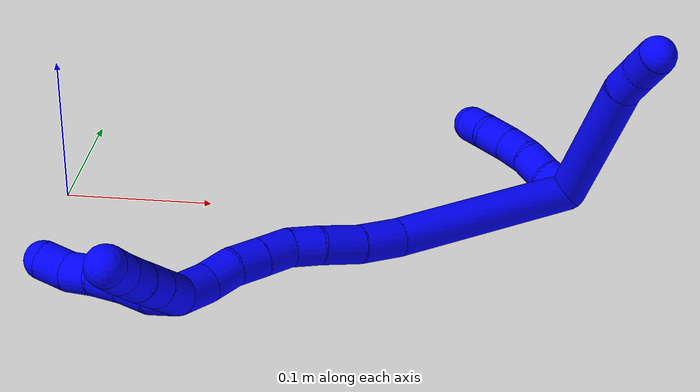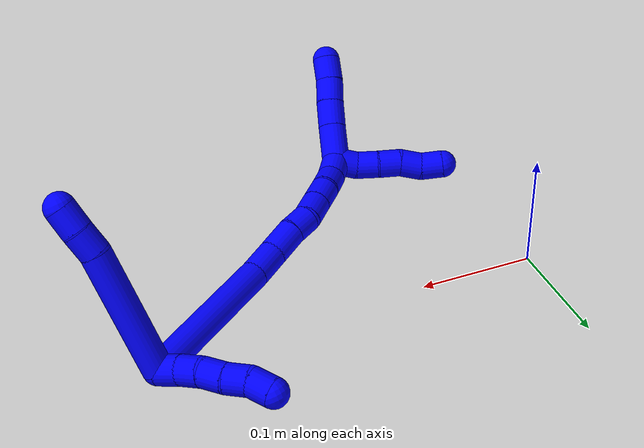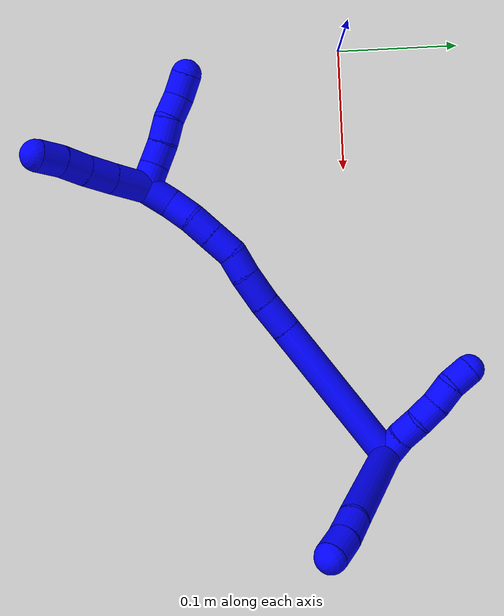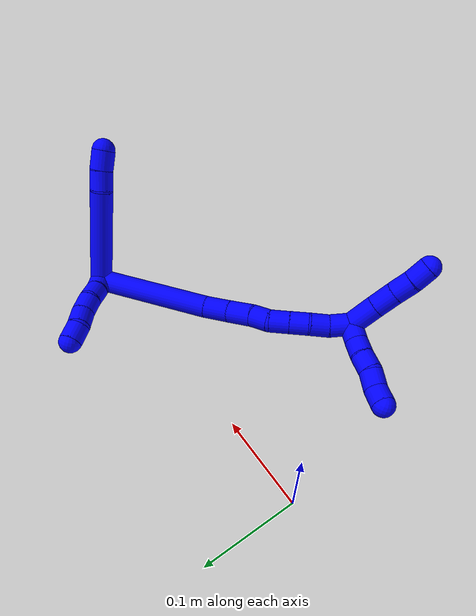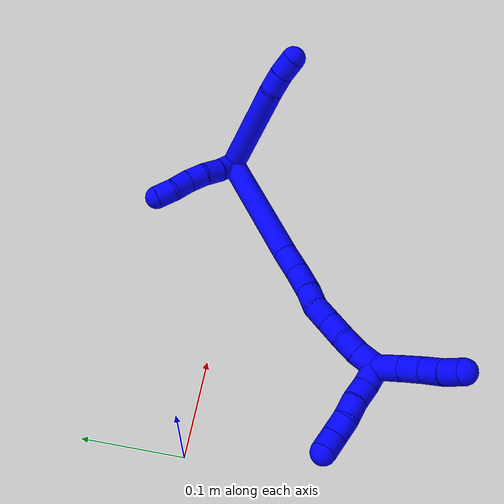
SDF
<sdf version="1.7">
 <world name="default">
  <model name="1">
   <static>0</static>
   <link name="1">
    <collision name="collision-cylinder-e_1_2_8">
     <pose>0.010326 0.001649 -0.052721 -3.11034 0.19332 -2.82194</pose>
     <geometry><cylinder><radius>0.0125</radius><length>0.107497</length></cylinder></geometry>
     <surface>
      <friction><ode><mu>1.16</mu><mu2>1.16</mu2><slip1>0</slip1><slip2>0</slip2></ode></friction>
      <contact><ode><kp>1e+06</kp><kd>1</kd><max_vel>0</max_vel><min_depth>0.001</min_depth></ode></contact>
     </surface>
    </collision>
    <visual name="visual-cylinder-e_1_2_8">
     <pose>0.010326 0.001649 -0.052721 -3.11034 0.19332 -2.82194</pose>
     <geometry><cylinder><radius>0.0125</radius><length>0.107497</length></cylinder></geometry>
     <material><ambient>0 0 1 1</ambient></material>
    </visual>
    <collision name="collision-cylinder-e_2_8_9">
     <pose>0.021833 0.005676 -0.115765 -2.91504 0.110982 -0.90843</pose>
     <geometry><cylinder><radius>0.0125</radius><length>0.021317</length></cylinder></geometry>
     <surface>
      <friction><ode><mu>1.16</mu><mu2>1.16</mu2><slip1>0</slip1><slip2>0</slip2></ode></friction>
      <contact><ode><kp>1e+06</kp><kd>1</kd><max_vel>0</max_vel><min_depth>0.001</min_depth></ode></contact>
     </surface>
    </collision>
    <visual name="visual-cylinder-e_2_8_9">
     <pose>0.021833 0.005676 -0.115765 -2.91504 0.110982 -0.90843</pose>
     <geometry><cylinder><radius>0.0125</radius><length>0.021317</length></cylinder></geometry>
     <material><ambient>0 0 1 1</ambient></material>
    </visual>
    <collision name="collision-cylinder-e_3_9_6">
     <pose>0.023026 0.009979 -0.136504 -2.95907 0.001272 -0.013897</pose>
     <geometry><cylinder><radius>0.0125</radius><length>0.021186</length></cylinder></geometry>
     <surface>
      <friction><ode><mu>1.16</mu><mu2>1.16</mu2><slip1>0</slip1><slip2>0</slip2></ode></friction>
      <contact><ode><kp>1e+06</kp><kd>1</kd><max_vel>0</max_vel><min_depth>0.001</min_depth></ode></contact>
     </surface>
    </collision>
    <visual name="visual-cylinder-e_3_9_6">
     <pose>0.023026 0.009979 -0.136504 -2.95907 0.001272 -0.013897</pose>
     <geometry><cylinder><radius>0.0125</radius><length>0.021186</length></cylinder></geometry>
     <material><ambient>0 0 1 1</ambient></material>
    </visual>
    <collision name="collision-cylinder-e_1_2_10">
     <pose>0.005636 -0.007723 0.00293 1.20825 0.598791 0.419823</pose>
     <geometry><cylinder><radius>0.0125</radius><length>0.02</length></cylinder></geometry>
     <surface>
      <friction><ode><mu>1.16</mu><mu2>1.16</mu2><slip1>0</slip1><slip2>0</slip2></ode></friction>
      <contact><ode><kp>1e+06</kp><kd>1</kd><max_vel>0</max_vel><min_depth>0.001</min_depth></ode></contact>
     </surface>
    </collision>
    <visual name="visual-cylinder-e_1_2_10">
     <pose>0.005636 -0.007723 0.00293 1.20825 0.598791 0.419823</pose>
     <geometry><cylinder><radius>0.0125</radius><length>0.02</length></cylinder></geometry>
     <material><ambient>0 0 1 1</ambient></material>
    </visual>
    <collision name="collision-cylinder-e_2_10_11">
     <pose>0.018043 -0.022184 0.00882 1.15665 0.743735 0.498593</pose>
     <geometry><cylinder><radius>0.0125</radius><length>0.02</length></cylinder></geometry>
     <surface>
      <friction><ode><mu>1.16</mu><mu2>1.16</mu2><slip1>0</slip1><slip2>0</slip2></ode></friction>
      <contact><ode><kp>1e+06</kp><kd>1</kd><max_vel>0</max_vel><min_depth>0.001</min_depth></ode></contact>
     </surface>
    </collision>
    <visual name="visual-cylinder-e_2_10_11">
     <pose>0.018043 -0.022184 0.00882 1.15665 0.743735 0.498593</pose>
     <geometry><cylinder><radius>0.0125</radius><length>0.02</length></cylinder></geometry>
     <material><ambient>0 0 1 1</ambient></material>
    </visual>
    <collision name="collision-cylinder-e_3_11_12">
     <pose>0.030677 -0.035381 0.016669 0.923166 0.626558 0.31953</pose>
     <geometry><cylinder><radius>0.0125</radius><length>0.02</length></cylinder></geometry>
     <surface>
      <friction><ode><mu>1.16</mu><mu2>1.16</mu2><slip1>0</slip1><slip2>0</slip2></ode></friction>
      <contact><ode><kp>1e+06</kp><kd>1</kd><max_vel>0</max_vel><min_depth>0.001</min_depth></ode></contact>
     </surface>
    </collision>
    <visual name="visual-cylinder-e_3_11_12">
     <pose>0.030677 -0.035381 0.016669 0.923166 0.626558 0.31953</pose>
     <geometry><cylinder><radius>0.0125</radius><length>0.02</length></cylinder></geometry>
     <material><ambient>0 0 1 1</ambient></material>
    </visual>
    <collision name="collision-cylinder-e_4_12_13">
     <pose>0.041502 -0.049475 0.025692 1.07426 0.519168 0.313723</pose>
     <geometry><cylinder><radius>0.0125</radius><length>0.02</length></cylinder></geometry>
     <surface>
      <friction><ode><mu>1.16</mu><mu2>1.16</mu2><slip1>0</slip1><slip2>0</slip2></ode></friction>
      <contact><ode><kp>1e+06</kp><kd>1</kd><max_vel>0</max_vel><min_depth>0.001</min_depth></ode></contact>
     </surface>
    </collision>
    <visual name="visual-cylinder-e_4_12_13">
     <pose>0.041502 -0.049475 0.025692 1.07426 0.519168 0.313723</pose>
     <geometry><cylinder><radius>0.0125</radius><length>0.02</length></cylinder></geometry>
     <material><ambient>0 0 1 1</ambient></material>
    </visual>
    <collision name="collision-cylinder-e_5_13_5">
     <pose>0.052062 -0.062393 0.036211 0.691429 0.59416 0.219644</pose>
     <geometry><cylinder><radius>0.0125</radius><length>0.02</length></cylinder></geometry>
     <surface>
      <friction><ode><mu>1.16</mu><mu2>1.16</mu2><slip1>0</slip1><slip2>0</slip2></ode></friction>
      <contact><ode><kp>1e+06</kp><kd>1</kd><max_vel>0</max_vel><min_depth>0.001</min_depth></ode></contact>
     </surface>
    </collision>
    <visual name="visual-cylinder-e_5_13_5">
     <pose>0.052062 -0.062393 0.036211 0.691429 0.59416 0.219644</pose>
     <geometry><cylinder><radius>0.0125</radius><length>0.02</length></cylinder></geometry>
     <material><ambient>0 0 1 1</ambient></material>
    </visual>
    <collision name="collision-cylinder-e_1_2_14">
     <pose>-0.038882 -0.053399 -0.009232 1.74199 -0.622368 -0.729808</pose>
     <geometry><cylinder><radius>0.0125</radius><length>0.133394</length></cylinder></geometry>
     <surface>
      <friction><ode><mu>1.16</mu><mu2>1.16</mu2><slip1>0</slip1><slip2>0</slip2></ode></friction>
      <contact><ode><kp>1e+06</kp><kd>1</kd><max_vel>0</max_vel><min_depth>0.001</min_depth></ode></contact>
     </surface>
    </collision>
    <visual name="visual-cylinder-e_1_2_14">
     <pose>-0.038882 -0.053399 -0.009232 1.74199 -0.622368 -0.729808</pose>
     <geometry><cylinder><radius>0.0125</radius><length>0.133394</length></cylinder></geometry>
     <material><ambient>0 0 1 1</ambient></material>
    </visual>
    <collision name="collision-cylinder-e_2_14_15">
     <pose>-0.085407 -0.118581 -0.021645 1.83441 -0.55953 -0.717752</pose>
     <geometry><cylinder><radius>0.0125</radius><length>0.028801</length></cylinder></geometry>
     <surface>
      <friction><ode><mu>1.16</mu><mu2>1.16</mu2><slip1>0</slip1><slip2>0</slip2></ode></friction>
      <contact><ode><kp>1e+06</kp><kd>1</kd><max_vel>0</max_vel><min_depth>0.001</min_depth></ode></contact>
     </surface>
    </collision>
    <visual name="visual-cylinder-e_2_14_15">
     <pose>-0.085407 -0.118581 -0.021645 1.83441 -0.55953 -0.717752</pose>
     <geometry><cylinder><radius>0.0125</radius><length>0.028801</length></cylinder></geometry>
     <material><ambient>0 0 1 1</ambient></material>
    </visual>
    <collision name="collision-cylinder-e_3_15_16">
     <pose>-0.099001 -0.142675 -0.028671 1.87362 -0.432277 -0.580411</pose>
     <geometry><cylinder><radius>0.0125</radius><length>0.028409</length></cylinder></geometry>
     <surface>
      <friction><ode><mu>1.16</mu><mu2>1.16</mu2><slip1>0</slip1><slip2>0</slip2></ode></friction>
      <contact><ode><kp>1e+06</kp><kd>1</kd><max_vel>0</max_vel><min_depth>0.001</min_depth></ode></contact>
     </surface>
    </collision>
    <visual name="visual-cylinder-e_3_15_16">
     <pose>-0.099001 -0.142675 -0.028671 1.87362 -0.432277 -0.580411</pose>
     <geometry><cylinder><radius>0.0125</radius><length>0.028409</length></cylinder></geometry>
     <material><ambient>0 0 1 1</ambient></material>
    </visual>
    <collision name="collision-cylinder-e_4_16_17">
     <pose>-0.109331 -0.164243 -0.034088 1.73888 -0.436407 -0.513467</pose>
     <geometry><cylinder><radius>0.0125</radius><length>0.02072</length></cylinder></geometry>
     <surface>
      <friction><ode><mu>1.16</mu><mu2>1.16</mu2><slip1>0</slip1><slip2>0</slip2></ode></friction>
      <contact><ode><kp>1e+06</kp><kd>1</kd><max_vel>0</max_vel><min_depth>0.001</min_depth></ode></contact>
     </surface>
    </collision>
    <visual name="visual-cylinder-e_4_16_17">
     <pose>-0.109331 -0.164243 -0.034088 1.73888 -0.436407 -0.513467</pose>
     <geometry><cylinder><radius>0.0125</radius><length>0.02072</length></cylinder></geometry>
     <material><ambient>0 0 1 1</ambient></material>
    </visual>
    <collision name="collision-cylinder-e_5_17_18">
     <pose>-0.121162 -0.181348 -0.038668 1.93691 -0.725302 -1.00851</pose>
     <geometry><cylinder><radius>0.0125</radius><length>0.022467</length></cylinder></geometry>
     <surface>
      <friction><ode><mu>1.16</mu><mu2>1.16</mu2><slip1>0</slip1><slip2>0</slip2></ode></friction>
      <contact><ode><kp>1e+06</kp><kd>1</kd><max_vel>0</max_vel><min_depth>0.001</min_depth></ode></contact>
     </surface>
    </collision>
    <visual name="visual-cylinder-e_5_17_18">
     <pose>-0.121162 -0.181348 -0.038668 1.93691 -0.725302 -1.00851</pose>
     <geometry><cylinder><radius>0.0125</radius><length>0.022467</length></cylinder></geometry>
     <material><ambient>0 0 1 1</ambient></material>
    </visual>
    <collision name="collision-cylinder-e_6_18_19">
     <pose>-0.135507 -0.196636 -0.044578 1.94259 -0.712109 -0.996746</pose>
     <geometry><cylinder><radius>0.0125</radius><length>0.021097</length></cylinder></geometry>
     <surface>
      <friction><ode><mu>1.16</mu><mu2>1.16</mu2><slip1>0</slip1><slip2>0</slip2></ode></friction>
      <contact><ode><kp>1e+06</kp><kd>1</kd><max_vel>0</max_vel><min_depth>0.001</min_depth></ode></contact>
     </surface>
    </collision>
    <visual name="visual-cylinder-e_6_18_19">
     <pose>-0.135507 -0.196636 -0.044578 1.94259 -0.712109 -0.996746</pose>
     <geometry><cylinder><radius>0.0125</radius><length>0.021097</length></cylinder></geometry>
     <material><ambient>0 0 1 1</ambient></material>
    </visual>
    <collision name="collision-cylinder-e_7_19_20">
     <pose>-0.150844 -0.210384 -0.049524 1.88433 -0.905075 -1.17888</pose>
     <geometry><cylinder><radius>0.0125</radius><length>0.021475</length></cylinder></geometry>
     <surface>
      <friction><ode><mu>1.16</mu><mu2>1.16</mu2><slip1>0</slip1><slip2>0</slip2></ode></friction>
      <contact><ode><kp>1e+06</kp><kd>1</kd><max_vel>0</max_vel><min_depth>0.001</min_depth></ode></contact>
     </surface>
    </collision>
    <visual name="visual-cylinder-e_7_19_20">
     <pose>-0.150844 -0.210384 -0.049524 1.88433 -0.905075 -1.17888</pose>
     <geometry><cylinder><radius>0.0125</radius><length>0.021475</length></cylinder></geometry>
     <material><ambient>0 0 1 1</ambient></material>
    </visual>
    <collision name="collision-cylinder-e_8_20_1">
     <pose>-0.167626 -0.223656 -0.056227 2.16031 -0.783032 -1.31584</pose>
     <geometry><cylinder><radius>0.0125</radius><length>0.023637</length></cylinder></geometry>
     <surface>
      <friction><ode><mu>1.16</mu><mu2>1.16</mu2><slip1>0</slip1><slip2>0</slip2></ode></friction>
      <contact><ode><kp>1e+06</kp><kd>1</kd><max_vel>0</max_vel><min_depth>0.001</min_depth></ode></contact>
     </surface>
    </collision>
    <visual name="visual-cylinder-e_8_20_1">
     <pose>-0.167626 -0.223656 -0.056227 2.16031 -0.783032 -1.31584</pose>
     <geometry><cylinder><radius>0.0125</radius><length>0.023637</length></cylinder></geometry>
     <material><ambient>0 0 1 1</ambient></material>
    </visual>
    <collision name="collision-cylinder-e_1_1_21">
     <pose>-0.175272 -0.238605 -0.054906 0.928205 0.069159 0.034629</pose>
     <geometry><cylinder><radius>0.0125</radius><length>0.02</length></cylinder></geometry>
     <surface>
      <friction><ode><mu>1.16</mu><mu2>1.16</mu2><slip1>0</slip1><slip2>0</slip2></ode></friction>
      <contact><ode><kp>1e+06</kp><kd>1</kd><max_vel>0</max_vel><min_depth>0.001</min_depth></ode></contact>
     </surface>
    </collision>
    <visual name="visual-cylinder-e_1_1_21">
     <pose>-0.175272 -0.238605 -0.054906 0.928205 0.069159 0.034629</pose>
     <geometry><cylinder><radius>0.0125</radius><length>0.02</length></cylinder></geometry>
     <material><ambient>0 0 1 1</ambient></material>
    </visual>
    <collision name="collision-cylinder-e_2_21_22">
     <pose>-0.171792 -0.255476 -0.045283 1.1816 0.282714 0.190317</pose>
     <geometry><cylinder><radius>0.0125</radius><length>0.02</length></cylinder></geometry>
     <surface>
      <friction><ode><mu>1.16</mu><mu2>1.16</mu2><slip1>0</slip1><slip2>0</slip2></ode></friction>
      <contact><ode><kp>1e+06</kp><kd>1</kd><max_vel>0</max_vel><min_depth>0.001</min_depth></ode></contact>
     </surface>
    </collision>
    <visual name="visual-cylinder-e_2_21_22">
     <pose>-0.171792 -0.255476 -0.045283 1.1816 0.282714 0.190317</pose>
     <geometry><cylinder><radius>0.0125</radius><length>0.02</length></cylinder></geometry>
     <material><ambient>0 0 1 1</ambient></material>
    </visual>
    <collision name="collision-cylinder-e_3_22_23">
     <pose>-0.167508 -0.273599 -0.038114 1.20626 0.149946 0.103376</pose>
     <geometry><cylinder><radius>0.0125</radius><length>0.02</length></cylinder></geometry>
     <surface>
      <friction><ode><mu>1.16</mu><mu2>1.16</mu2><slip1>0</slip1><slip2>0</slip2></ode></friction>
      <contact><ode><kp>1e+06</kp><kd>1</kd><max_vel>0</max_vel><min_depth>0.001</min_depth></ode></contact>
     </surface>
    </collision>
    <visual name="visual-cylinder-e_3_22_23">
     <pose>-0.167508 -0.273599 -0.038114 1.20626 0.149946 0.103376</pose>
     <geometry><cylinder><radius>0.0125</radius><length>0.02</length></cylinder></geometry>
     <material><ambient>0 0 1 1</ambient></material>
    </visual>
    <collision name="collision-cylinder-e_4_23_24">
     <pose>-0.16441 -0.290866 -0.028847 0.949926 0.161103 0.082975</pose>
     <geometry><cylinder><radius>0.0125</radius><length>0.02</length></cylinder></geometry>
     <surface>
      <friction><ode><mu>1.16</mu><mu2>1.16</mu2><slip1>0</slip1><slip2>0</slip2></ode></friction>
      <contact><ode><kp>1e+06</kp><kd>1</kd><max_vel>0</max_vel><min_depth>0.001</min_depth></ode></contact>
     </surface>
    </collision>
    <visual name="visual-cylinder-e_4_23_24">
     <pose>-0.16441 -0.290866 -0.028847 0.949926 0.161103 0.082975</pose>
     <geometry><cylinder><radius>0.0125</radius><length>0.02</length></cylinder></geometry>
     <material><ambient>0 0 1 1</ambient></material>
    </visual>
    <collision name="collision-cylinder-e_5_24_4">
     <pose>-0.159992 -0.308021 -0.020141 1.25678 0.285244 0.207937</pose>
     <geometry><cylinder><radius>0.0125</radius><length>0.02</length></cylinder></geometry>
     <surface>
      <friction><ode><mu>1.16</mu><mu2>1.16</mu2><slip1>0</slip1><slip2>0</slip2></ode></friction>
      <contact><ode><kp>1e+06</kp><kd>1</kd><max_vel>0</max_vel><min_depth>0.001</min_depth></ode></contact>
     </surface>
    </collision>
    <visual name="visual-cylinder-e_5_24_4">
     <pose>-0.159992 -0.308021 -0.020141 1.25678 0.285244 0.207937</pose>
     <geometry><cylinder><radius>0.0125</radius><length>0.02</length></cylinder></geometry>
     <material><ambient>0 0 1 1</ambient></material>
    </visual>
    <collision name="collision-cylinder-e_1_1_25">
     <pose>-0.181681 -0.236797 -0.07493 2.72719 -0.356675 -1.4176</pose>
     <geometry><cylinder><radius>0.0125</radius><length>0.032751</length></cylinder></geometry>
     <surface>
      <friction><ode><mu>1.16</mu><mu2>1.16</mu2><slip1>0</slip1><slip2>0</slip2></ode></friction>
      <contact><ode><kp>1e+06</kp><kd>1</kd><max_vel>0</max_vel><min_depth>0.001</min_depth></ode></contact>
     </surface>
    </collision>
    <visual name="visual-cylinder-e_1_1_25">
     <pose>-0.181681 -0.236797 -0.07493 2.72719 -0.356675 -1.4176</pose>
     <geometry><cylinder><radius>0.0125</radius><length>0.032751</length></cylinder></geometry>
     <material><ambient>0 0 1 1</ambient></material>
    </visual>
    <collision name="collision-cylinder-e_2_25_26">
     <pose>-0.191547 -0.247809 -0.099295 2.70357 -0.349123 -1.34007</pose>
     <geometry><cylinder><radius>0.0125</radius><length>0.024253</length></cylinder></geometry>
     <surface>
      <friction><ode><mu>1.16</mu><mu2>1.16</mu2><slip1>0</slip1><slip2>0</slip2></ode></friction>
      <contact><ode><kp>1e+06</kp><kd>1</kd><max_vel>0</max_vel><min_depth>0.001</min_depth></ode></contact>
     </surface>
    </collision>
    <visual name="visual-cylinder-e_2_25_26">
     <pose>-0.191547 -0.247809 -0.099295 2.70357 -0.349123 -1.34007</pose>
     <geometry><cylinder><radius>0.0125</radius><length>0.024253</length></cylinder></geometry>
     <material><ambient>0 0 1 1</ambient></material>
    </visual>
    <collision name="collision-cylinder-e_3_26_27">
     <pose>-0.199058 -0.257507 -0.118755 2.65253 -0.314051 -1.13084</pose>
     <geometry><cylinder><radius>0.0125</radius><length>0.021775</length></cylinder></geometry>
     <surface>
      <friction><ode><mu>1.16</mu><mu2>1.16</mu2><slip1>0</slip1><slip2>0</slip2></ode></friction>
      <contact><ode><kp>1e+06</kp><kd>1</kd><max_vel>0</max_vel><min_depth>0.001</min_depth></ode></contact>
     </surface>
    </collision>
    <visual name="visual-cylinder-e_3_26_27">
     <pose>-0.199058 -0.257507 -0.118755 2.65253 -0.314051 -1.13084</pose>
     <geometry><cylinder><radius>0.0125</radius><length>0.021775</length></cylinder></geometry>
     <material><ambient>0 0 1 1</ambient></material>
    </visual>
    <collision name="collision-cylinder-e_4_27_3">
     <pose>-0.205668 -0.265922 -0.137353 2.78245 -0.310995 -1.42464</pose>
     <geometry><cylinder><radius>0.0125</radius><length>0.021222</length></cylinder></geometry>
     <surface>
      <friction><ode><mu>1.16</mu><mu2>1.16</mu2><slip1>0</slip1><slip2>0</slip2></ode></friction>
      <contact><ode><kp>1e+06</kp><kd>1</kd><max_vel>0</max_vel><min_depth>0.001</min_depth></ode></contact>
     </surface>
    </collision>
    <visual name="visual-cylinder-e_4_27_3">
     <pose>-0.205668 -0.265922 -0.137353 2.78245 -0.310995 -1.42464</pose>
     <geometry><cylinder><radius>0.0125</radius><length>0.021222</length></cylinder></geometry>
     <material><ambient>0 0 1 1</ambient></material>
    </visual>
    <collision name="collision-sphere-3">
     <pose>-0.208915 -0.269473 -0.146811 0 -0 0</pose>
     <geometry><sphere><radius>0.0125</radius></sphere></geometry>
     <surface>
      <friction><ode><mu>1.16</mu><mu2>1.16</mu2><slip1>0</slip1><slip2>0</slip2></ode></friction>
      <contact><ode><kp>1e+06</kp><kd>1</kd><max_vel>0</max_vel><min_depth>0.001</min_depth></ode></contact>
     </surface>
    </collision>
    <visual name="visual-sphere-3">
     <pose>-0.208915 -0.269473 -0.146811 0 -0 0</pose>
     <geometry><sphere><radius>0.0125</radius></sphere></geometry>
     <material><ambient>0 0 1 1</ambient></material>
    </visual>
    <collision name="collision-sphere-27">
     <pose>-0.202421 -0.262371 -0.127896 0 -0 0</pose>
     <geometry><sphere><radius>0.0125</radius></sphere></geometry>
     <surface>
      <friction><ode><mu>1.16</mu><mu2>1.16</mu2><slip1>0</slip1><slip2>0</slip2></ode></friction>
      <contact><ode><kp>1e+06</kp><kd>1</kd><max_vel>0</max_vel><min_depth>0.001</min_depth></ode></contact>
     </surface>
    </collision>
    <visual name="visual-sphere-27">
     <pose>-0.202421 -0.262371 -0.127896 0 -0 0</pose>
     <geometry><sphere><radius>0.0125</radius></sphere></geometry>
     <material><ambient>0 0 1 1</ambient></material>
    </visual>
    <collision name="collision-sphere-26">
     <pose>-0.195695 -0.252642 -0.109614 0 -0 0</pose>
     <geometry><sphere><radius>0.0125</radius></sphere></geometry>
     <surface>
      <friction><ode><mu>1.16</mu><mu2>1.16</mu2><slip1>0</slip1><slip2>0</slip2></ode></friction>
      <contact><ode><kp>1e+06</kp><kd>1</kd><max_vel>0</max_vel><min_depth>0.001</min_depth></ode></contact>
     </surface>
    </collision>
    <visual name="visual-sphere-26">
     <pose>-0.195695 -0.252642 -0.109614 0 -0 0</pose>
     <geometry><sphere><radius>0.0125</radius></sphere></geometry>
     <material><ambient>0 0 1 1</ambient></material>
    </visual>
    <collision name="collision-sphere-25">
     <pose>-0.187399 -0.242976 -0.088976 0 -0 0</pose>
     <geometry><sphere><radius>0.0125</radius></sphere></geometry>
     <surface>
      <friction><ode><mu>1.16</mu><mu2>1.16</mu2><slip1>0</slip1><slip2>0</slip2></ode></friction>
      <contact><ode><kp>1e+06</kp><kd>1</kd><max_vel>0</max_vel><min_depth>0.001</min_depth></ode></contact>
     </surface>
    </collision>
    <visual name="visual-sphere-25">
     <pose>-0.187399 -0.242976 -0.088976 0 -0 0</pose>
     <geometry><sphere><radius>0.0125</radius></sphere></geometry>
     <material><ambient>0 0 1 1</ambient></material>
    </visual>
    <collision name="collision-sphere-4">
     <pose>-0.157178 -0.317147 -0.017177 0 -0 0</pose>
     <geometry><sphere><radius>0.0125</radius></sphere></geometry>
     <surface>
      <friction><ode><mu>1.16</mu><mu2>1.16</mu2><slip1>0</slip1><slip2>0</slip2></ode></friction>
      <contact><ode><kp>1e+06</kp><kd>1</kd><max_vel>0</max_vel><min_depth>0.001</min_depth></ode></contact>
     </surface>
    </collision>
    <visual name="visual-sphere-4">
     <pose>-0.157178 -0.317147 -0.017177 0 -0 0</pose>
     <geometry><sphere><radius>0.0125</radius></sphere></geometry>
     <material><ambient>0 0 1 1</ambient></material>
    </visual>
    <collision name="collision-sphere-24">
     <pose>-0.162806 -0.298894 -0.023105 0 -0 0</pose>
     <geometry><sphere><radius>0.0125</radius></sphere></geometry>
     <surface>
      <friction><ode><mu>1.16</mu><mu2>1.16</mu2><slip1>0</slip1><slip2>0</slip2></ode></friction>
      <contact><ode><kp>1e+06</kp><kd>1</kd><max_vel>0</max_vel><min_depth>0.001</min_depth></ode></contact>
     </surface>
    </collision>
    <visual name="visual-sphere-24">
     <pose>-0.162806 -0.298894 -0.023105 0 -0 0</pose>
     <geometry><sphere><radius>0.0125</radius></sphere></geometry>
     <material><ambient>0 0 1 1</ambient></material>
    </visual>
    <collision name="collision-sphere-23">
     <pose>-0.166014 -0.282837 -0.034589 0 -0 0</pose>
     <geometry><sphere><radius>0.0125</radius></sphere></geometry>
     <surface>
      <friction><ode><mu>1.16</mu><mu2>1.16</mu2><slip1>0</slip1><slip2>0</slip2></ode></friction>
      <contact><ode><kp>1e+06</kp><kd>1</kd><max_vel>0</max_vel><min_depth>0.001</min_depth></ode></contact>
     </surface>
    </collision>
    <visual name="visual-sphere-23">
     <pose>-0.166014 -0.282837 -0.034589 0 -0 0</pose>
     <geometry><sphere><radius>0.0125</radius></sphere></geometry>
     <material><ambient>0 0 1 1</ambient></material>
    </visual>
    <collision name="collision-sphere-22">
     <pose>-0.169002 -0.264361 -0.04164 0 -0 0</pose>
     <geometry><sphere><radius>0.0125</radius></sphere></geometry>
     <surface>
      <friction><ode><mu>1.16</mu><mu2>1.16</mu2><slip1>0</slip1><slip2>0</slip2></ode></friction>
      <contact><ode><kp>1e+06</kp><kd>1</kd><max_vel>0</max_vel><min_depth>0.001</min_depth></ode></contact>
     </surface>
    </collision>
    <visual name="visual-sphere-22">
     <pose>-0.169002 -0.264361 -0.04164 0 -0 0</pose>
     <geometry><sphere><radius>0.0125</radius></sphere></geometry>
     <material><ambient>0 0 1 1</ambient></material>
    </visual>
    <collision name="collision-sphere-21">
     <pose>-0.174581 -0.246591 -0.048927 0 -0 0</pose>
     <geometry><sphere><radius>0.0125</radius></sphere></geometry>
     <surface>
      <friction><ode><mu>1.16</mu><mu2>1.16</mu2><slip1>0</slip1><slip2>0</slip2></ode></friction>
      <contact><ode><kp>1e+06</kp><kd>1</kd><max_vel>0</max_vel><min_depth>0.001</min_depth></ode></contact>
     </surface>
    </collision>
    <visual name="visual-sphere-21">
     <pose>-0.174581 -0.246591 -0.048927 0 -0 0</pose>
     <geometry><sphere><radius>0.0125</radius></sphere></geometry>
     <material><ambient>0 0 1 1</ambient></material>
    </visual>
    <collision name="collision-sphere-1">
     <pose>-0.175963 -0.230619 -0.060884 0 -0 0</pose>
     <geometry><sphere><radius>0.0125</radius></sphere></geometry>
     <surface>
      <friction><ode><mu>1.16</mu><mu2>1.16</mu2><slip1>0</slip1><slip2>0</slip2></ode></friction>
      <contact><ode><kp>1e+06</kp><kd>1</kd><max_vel>0</max_vel><min_depth>0.001</min_depth></ode></contact>
     </surface>
    </collision>
    <visual name="visual-sphere-1">
     <pose>-0.175963 -0.230619 -0.060884 0 -0 0</pose>
     <geometry><sphere><radius>0.0125</radius></sphere></geometry>
     <material><ambient>0 0 1 1</ambient></material>
    </visual>
    <collision name="collision-sphere-11">
     <pose>0.024814 -0.028921 0.011782 0 -0 0</pose>
     <geometry><sphere><radius>0.0125</radius></sphere></geometry>
     <surface>
      <friction><ode><mu>1.16</mu><mu2>1.16</mu2><slip1>0</slip1><slip2>0</slip2></ode></friction>
      <contact><ode><kp>1e+06</kp><kd>1</kd><max_vel>0</max_vel><min_depth>0.001</min_depth></ode></contact>
     </surface>
    </collision>
    <visual name="visual-sphere-11">
     <pose>0.024814 -0.028921 0.011782 0 -0 0</pose>
     <geometry><sphere><radius>0.0125</radius></sphere></geometry>
     <material><ambient>0 0 1 1</ambient></material>
    </visual>
    <collision name="collision-sphere-10">
     <pose>0.011273 -0.015446 0.005859 0 -0 0</pose>
     <geometry><sphere><radius>0.0125</radius></sphere></geometry>
     <surface>
      <friction><ode><mu>1.16</mu><mu2>1.16</mu2><slip1>0</slip1><slip2>0</slip2></ode></friction>
      <contact><ode><kp>1e+06</kp><kd>1</kd><max_vel>0</max_vel><min_depth>0.001</min_depth></ode></contact>
     </surface>
    </collision>
    <visual name="visual-sphere-10">
     <pose>0.011273 -0.015446 0.005859 0 -0 0</pose>
     <geometry><sphere><radius>0.0125</radius></sphere></geometry>
     <material><ambient>0 0 1 1</ambient></material>
    </visual>
    <collision name="collision-sphere-6">
     <pose>0.02304 0.011901 -0.146922 0 -0 0</pose>
     <geometry><sphere><radius>0.0125</radius></sphere></geometry>
     <surface>
      <friction><ode><mu>1.16</mu><mu2>1.16</mu2><slip1>0</slip1><slip2>0</slip2></ode></friction>
      <contact><ode><kp>1e+06</kp><kd>1</kd><max_vel>0</max_vel><min_depth>0.001</min_depth></ode></contact>
     </surface>
    </collision>
    <visual name="visual-sphere-6">
     <pose>0.02304 0.011901 -0.146922 0 -0 0</pose>
     <geometry><sphere><radius>0.0125</radius></sphere></geometry>
     <material><ambient>0 0 1 1</ambient></material>
    </visual>
    <collision name="collision-sphere-9">
     <pose>0.023013 0.008056 -0.126087 0 -0 0</pose>
     <geometry><sphere><radius>0.0125</radius></sphere></geometry>
     <surface>
      <friction><ode><mu>1.16</mu><mu2>1.16</mu2><slip1>0</slip1><slip2>0</slip2></ode></friction>
      <contact><ode><kp>1e+06</kp><kd>1</kd><max_vel>0</max_vel><min_depth>0.001</min_depth></ode></contact>
     </surface>
    </collision>
    <visual name="visual-sphere-9">
     <pose>0.023013 0.008056 -0.126087 0 -0 0</pose>
     <geometry><sphere><radius>0.0125</radius></sphere></geometry>
     <material><ambient>0 0 1 1</ambient></material>
    </visual>
    <collision name="collision-sphere-2">
     <geometry><sphere><radius>0.0125</radius></sphere></geometry>
     <surface>
      <friction><ode><mu>1.16</mu><mu2>1.16</mu2><slip1>0</slip1><slip2>0</slip2></ode></friction>
      <contact><ode><kp>1e+06</kp><kd>1</kd><max_vel>0</max_vel><min_depth>0.001</min_depth></ode></contact>
     </surface>
    </collision>
    <visual name="visual-sphere-2">
     <geometry><sphere><radius>0.0125</radius></sphere></geometry>
     <material><ambient>0 0 1 1</ambient></material>
    </visual>
    <collision name="collision-sphere-19">
     <pose>-0.142399 -0.204076 -0.047479 0 -0 0</pose>
     <geometry><sphere><radius>0.0125</radius></sphere></geometry>
     <surface>
      <friction><ode><mu>1.16</mu><mu2>1.16</mu2><slip1>0</slip1><slip2>0</slip2></ode></friction>
      <contact><ode><kp>1e+06</kp><kd>1</kd><max_vel>0</max_vel><min_depth>0.001</min_depth></ode></contact>
     </surface>
    </collision>
    <visual name="visual-sphere-19">
     <pose>-0.142399 -0.204076 -0.047479 0 -0 0</pose>
     <geometry><sphere><radius>0.0125</radius></sphere></geometry>
     <material><ambient>0 0 1 1</ambient></material>
    </visual>
    <collision name="collision-sphere-8">
     <pose>0.020652 0.003297 -0.105443 0 -0 0</pose>
     <geometry><sphere><radius>0.0125</radius></sphere></geometry>
     <surface>
      <friction><ode><mu>1.16</mu><mu2>1.16</mu2><slip1>0</slip1><slip2>0</slip2></ode></friction>
      <contact><ode><kp>1e+06</kp><kd>1</kd><max_vel>0</max_vel><min_depth>0.001</min_depth></ode></contact>
     </surface>
    </collision>
    <visual name="visual-sphere-8">
     <pose>0.020652 0.003297 -0.105443 0 -0 0</pose>
     <geometry><sphere><radius>0.0125</radius></sphere></geometry>
     <material><ambient>0 0 1 1</ambient></material>
    </visual>
    <collision name="collision-sphere-12">
     <pose>0.036541 -0.041842 0.021556 0 -0 0</pose>
     <geometry><sphere><radius>0.0125</radius></sphere></geometry>
     <surface>
      <friction><ode><mu>1.16</mu><mu2>1.16</mu2><slip1>0</slip1><slip2>0</slip2></ode></friction>
      <contact><ode><kp>1e+06</kp><kd>1</kd><max_vel>0</max_vel><min_depth>0.001</min_depth></ode></contact>
     </surface>
    </collision>
    <visual name="visual-sphere-12">
     <pose>0.036541 -0.041842 0.021556 0 -0 0</pose>
     <geometry><sphere><radius>0.0125</radius></sphere></geometry>
     <material><ambient>0 0 1 1</ambient></material>
    </visual>
    <collision name="collision-sphere-13">
     <pose>0.046464 -0.057109 0.029828 0 -0 0</pose>
     <geometry><sphere><radius>0.0125</radius></sphere></geometry>
     <surface>
      <friction><ode><mu>1.16</mu><mu2>1.16</mu2><slip1>0</slip1><slip2>0</slip2></ode></friction>
      <contact><ode><kp>1e+06</kp><kd>1</kd><max_vel>0</max_vel><min_depth>0.001</min_depth></ode></contact>
     </surface>
    </collision>
    <visual name="visual-sphere-13">
     <pose>0.046464 -0.057109 0.029828 0 -0 0</pose>
     <geometry><sphere><radius>0.0125</radius></sphere></geometry>
     <material><ambient>0 0 1 1</ambient></material>
    </visual>
    <collision name="collision-sphere-5">
     <pose>0.05766 -0.067677 0.042594 0 -0 0</pose>
     <geometry><sphere><radius>0.0125</radius></sphere></geometry>
     <surface>
      <friction><ode><mu>1.16</mu><mu2>1.16</mu2><slip1>0</slip1><slip2>0</slip2></ode></friction>
      <contact><ode><kp>1e+06</kp><kd>1</kd><max_vel>0</max_vel><min_depth>0.001</min_depth></ode></contact>
     </surface>
    </collision>
    <visual name="visual-sphere-5">
     <pose>0.05766 -0.067677 0.042594 0 -0 0</pose>
     <geometry><sphere><radius>0.0125</radius></sphere></geometry>
     <material><ambient>0 0 1 1</ambient></material>
    </visual>
    <collision name="collision-sphere-14">
     <pose>-0.077763 -0.106798 -0.018464 0 -0 0</pose>
     <geometry><sphere><radius>0.0125</radius></sphere></geometry>
     <surface>
      <friction><ode><mu>1.16</mu><mu2>1.16</mu2><slip1>0</slip1><slip2>0</slip2></ode></friction>
      <contact><ode><kp>1e+06</kp><kd>1</kd><max_vel>0</max_vel><min_depth>0.001</min_depth></ode></contact>
     </surface>
    </collision>
    <visual name="visual-sphere-14">
     <pose>-0.077763 -0.106798 -0.018464 0 -0 0</pose>
     <geometry><sphere><radius>0.0125</radius></sphere></geometry>
     <material><ambient>0 0 1 1</ambient></material>
    </visual>
    <collision name="collision-sphere-15">
     <pose>-0.093051 -0.130364 -0.024825 0 -0 0</pose>
     <geometry><sphere><radius>0.0125</radius></sphere></geometry>
     <surface>
      <friction><ode><mu>1.16</mu><mu2>1.16</mu2><slip1>0</slip1><slip2>0</slip2></ode></friction>
      <contact><ode><kp>1e+06</kp><kd>1</kd><max_vel>0</max_vel><min_depth>0.001</min_depth></ode></contact>
     </surface>
    </collision>
    <visual name="visual-sphere-15">
     <pose>-0.093051 -0.130364 -0.024825 0 -0 0</pose>
     <geometry><sphere><radius>0.0125</radius></sphere></geometry>
     <material><ambient>0 0 1 1</ambient></material>
    </visual>
    <collision name="collision-sphere-16">
     <pose>-0.104952 -0.154986 -0.032517 0 -0 0</pose>
     <geometry><sphere><radius>0.0125</radius></sphere></geometry>
     <surface>
      <friction><ode><mu>1.16</mu><mu2>1.16</mu2><slip1>0</slip1><slip2>0</slip2></ode></friction>
      <contact><ode><kp>1e+06</kp><kd>1</kd><max_vel>0</max_vel><min_depth>0.001</min_depth></ode></contact>
     </surface>
    </collision>
    <visual name="visual-sphere-16">
     <pose>-0.104952 -0.154986 -0.032517 0 -0 0</pose>
     <geometry><sphere><radius>0.0125</radius></sphere></geometry>
     <material><ambient>0 0 1 1</ambient></material>
    </visual>
    <collision name="collision-sphere-17">
     <pose>-0.11371 -0.173499 -0.035659 0 -0 0</pose>
     <geometry><sphere><radius>0.0125</radius></sphere></geometry>
     <surface>
      <friction><ode><mu>1.16</mu><mu2>1.16</mu2><slip1>0</slip1><slip2>0</slip2></ode></friction>
      <contact><ode><kp>1e+06</kp><kd>1</kd><max_vel>0</max_vel><min_depth>0.001</min_depth></ode></contact>
     </surface>
    </collision>
    <visual name="visual-sphere-17">
     <pose>-0.11371 -0.173499 -0.035659 0 -0 0</pose>
     <geometry><sphere><radius>0.0125</radius></sphere></geometry>
     <material><ambient>0 0 1 1</ambient></material>
    </visual>
    <collision name="collision-sphere-18">
     <pose>-0.128614 -0.189197 -0.041677 0 -0 0</pose>
     <geometry><sphere><radius>0.0125</radius></sphere></geometry>
     <surface>
      <friction><ode><mu>1.16</mu><mu2>1.16</mu2><slip1>0</slip1><slip2>0</slip2></ode></friction>
      <contact><ode><kp>1e+06</kp><kd>1</kd><max_vel>0</max_vel><min_depth>0.001</min_depth></ode></contact>
     </surface>
    </collision>
    <visual name="visual-sphere-18">
     <pose>-0.128614 -0.189197 -0.041677 0 -0 0</pose>
     <geometry><sphere><radius>0.0125</radius></sphere></geometry>
     <material><ambient>0 0 1 1</ambient></material>
    </visual>
    <collision name="collision-sphere-20">
     <pose>-0.159289 -0.216693 -0.05157 0 -0 0</pose>
     <geometry><sphere><radius>0.0125</radius></sphere></geometry>
     <surface>
      <friction><ode><mu>1.16</mu><mu2>1.16</mu2><slip1>0</slip1><slip2>0</slip2></ode></friction>
      <contact><ode><kp>1e+06</kp><kd>1</kd><max_vel>0</max_vel><min_depth>0.001</min_depth></ode></contact>
     </surface>
    </collision>
    <visual name="visual-sphere-20">
     <pose>-0.159289 -0.216693 -0.05157 0 -0 0</pose>
     <geometry><sphere><radius>0.0125</radius></sphere></geometry>
     <material><ambient>0 0 1 1</ambient></material>
    </visual>
    <inertial>
     <pose>-0.075413 -0.12187 -0.041209 0 -0 0</pose>
     <mass>0.75</mass>
     <inertia>
      <ixx>-0.00012</ixx>
      <ixy>0</ixy>
      <ixz>0</ixz>
      <iyy>-2.8e-05</iyy>
      <iyz>0</iyz>
      <izz>0.000272</izz>
     </inertia>
    </inertial>
   </link>
   <pose>0.339873 0.023547 0.012032 -2.84183 -0.535983 1.43935</pose>
  </model>
 </world>
</sdf>
